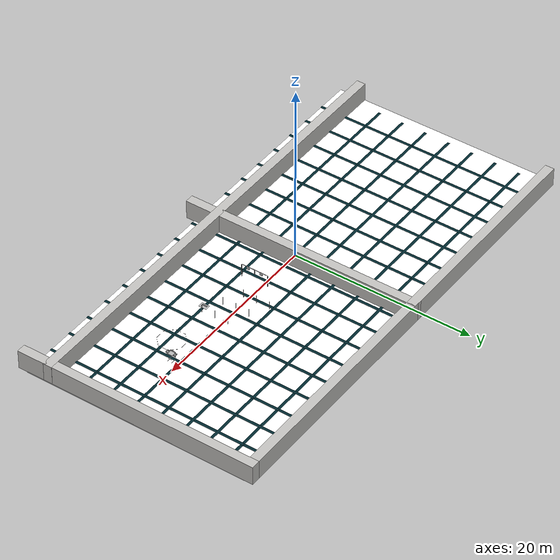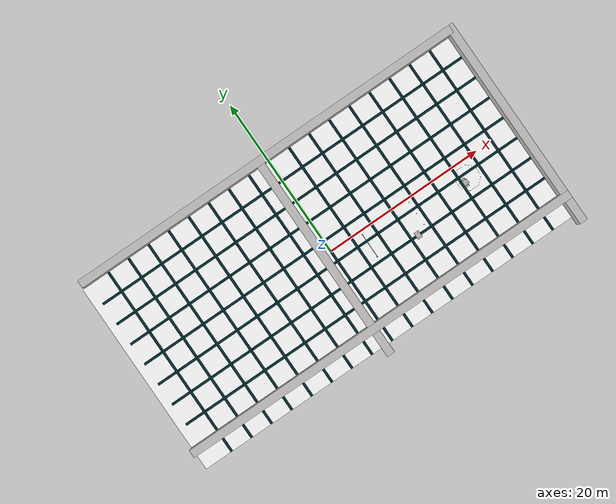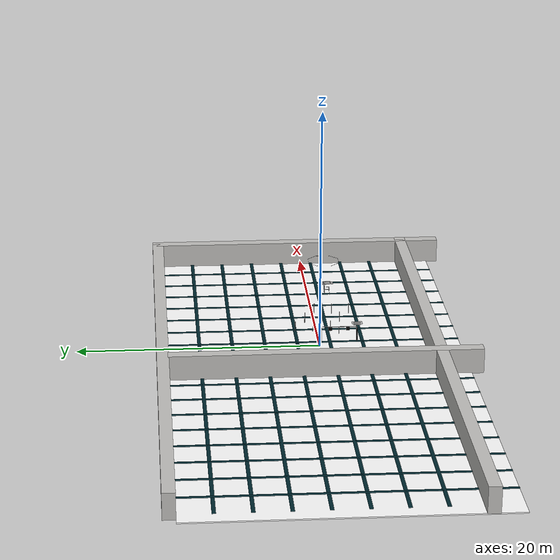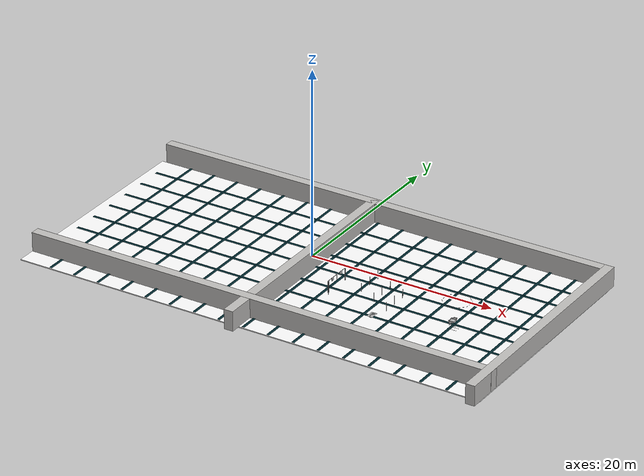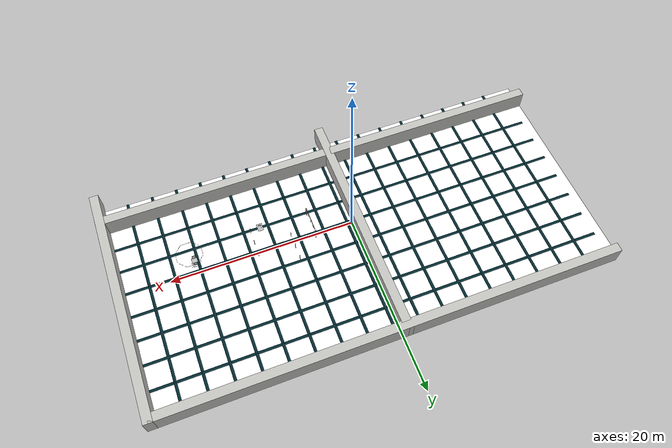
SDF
<?xml version="1.0" ?>
<sdf version="1.6">
  <world name="prequal_world">

    <!-- Configure the scene -->
    <scene>
      <!-- For turquoise ambient -->
      <ambient>0.0 1 1</ambient>
      <background>0.0 0.7 0.8</background>
    </scene>

    <!-- Configure the world physics -->
    <physics name="1ms" type="bullet">
      <max_step_size>0.001</max_step_size>
      <real_time_factor>1.0</real_time_factor>
    </physics>
    <plugin
      filename="gz-sim-physics-system"
      name="gz::sim::systems::Physics">
    </plugin>
    <plugin
      filename="gz-sim-sensors-system"
      name="gz::sim::systems::Sensors">
      <render_engine>ogre2</render_engine>
    </plugin>
    <plugin
      filename="gz-sim-user-commands-system"
      name="gz::sim::systems::UserCommands">
    </plugin>
    <plugin
      filename="gz-sim-scene-broadcaster-system"
      name="gz::sim::systems::SceneBroadcaster">
    </plugin>
    <plugin
      filename="gz-sim-buoyancy-system"
      name="gz::sim::systems::Buoyancy">
      <uniform_fluid_density>1025</uniform_fluid_density>
    </plugin>
    <plugin filename="gz-sim-imu-system"
            name="gz::sim::systems::Imu">
    </plugin>
    <plugin
      filename="gz-sim-air-pressure-system"
      name="gz::sim::systems::AirPressure">
    </plugin>

    <!-- Configure the GUI -->
    <gui>
      <!-- For some reason this is required to get the GUI to render the scene ambient/background -->
      <plugin filename="MinimalScene" name="3D View">
        <gz-gui>
          <title>3D View</title>
          <property type="bool" key="showTitleBar">false</property>
          <property type="string" key="state">docked</property>
        </gz-gui>

        <engine>ogre2</engine>
        <scene>scene</scene>
        <ambient>0.0 1.0 1.0</ambient>
        <background_color>0.0 0.7 0.8</background_color>
      </plugin>

      <!-- Plugins that add functionality to the scene (these got removed when using the MinimalScene Plugin so we have to re-add them-->
      <plugin filename="EntityContextMenuPlugin" name="Entity context menu">
        <gz-gui>
          <property key="state" type="string">floating</property>
          <property key="width" type="double">5</property>
          <property key="height" type="double">5</property>
          <property key="showTitleBar" type="bool">false</property>
        </gz-gui>
      </plugin>
      <plugin filename="GzSceneManager" name="Scene Manager">
        <gz-gui>
          <property key="resizable" type="bool">false</property>
          <property key="width" type="double">5</property>
          <property key="height" type="double">5</property>
          <property key="state" type="string">floating</property>
          <property key="showTitleBar" type="bool">false</property>
        </gz-gui>
      </plugin>
      <plugin filename="InteractiveViewControl" name="Interactive view control">
        <gz-gui>
          <property key="resizable" type="bool">false</property>
          <property key="width" type="double">5</property>
          <property key="height" type="double">5</property>
          <property key="state" type="string">floating</property>
          <property key="showTitleBar" type="bool">false</property>
        </gz-gui>
      </plugin>
      <plugin filename="CameraTracking" name="Camera Tracking">
        <gz-gui>
          <property key="resizable" type="bool">false</property>
          <property key="width" type="double">5</property>
          <property key="height" type="double">5</property>
          <property key="state" type="string">floating</property>
          <property key="showTitleBar" type="bool">false</property>
        </gz-gui>
      </plugin>

      <plugin filename="Spawn" name="Spawn Entities">
        <gz-gui>
          <property key="resizable" type="bool">false</property>
          <property key="width" type="double">5</property>
          <property key="height" type="double">5</property>
          <property key="state" type="string">floating</property>
          <property key="showTitleBar" type="bool">false</property>
        </gz-gui>
      </plugin>

      <!-- World control -->
      <plugin filename="WorldControl" name="World control">
        <gz-gui>
          <title>World control</title>
          <property type="bool" key="showTitleBar">false</property>
          <property type="bool" key="resizable">false</property>
          <property type="double" key="height">72</property>
          <property type="double" key="z">1</property>

          <property type="string" key="state">floating</property>
          <anchors target="3D View">
            <line own="left" target="left"/>
            <line own="bottom" target="bottom"/>
          </anchors>
        </gz-gui>

        <play_pause>true</play_pause>
        <step>true</step>
        <start_paused>true</start_paused>
        <use_event>true</use_event>

      </plugin>

      <!-- World statistics -->
      <plugin filename="WorldStats" name="World stats">
        <gz-gui>
          <title>World stats</title>
          <property type="bool" key="showTitleBar">false</property>
          <property type="bool" key="resizable">false</property>
          <property type="double" key="height">110</property>
          <property type="double" key="width">290</property>
          <property type="double" key="z">1</property>

          <property type="string" key="state">floating</property>
          <anchors target="3D View">
            <line own="right" target="right"/>
            <line own="bottom" target="bottom"/>
          </anchors>
        </gz-gui>

        <sim_time>true</sim_time>
        <real_time>true</real_time>
        <real_time_factor>true</real_time_factor>
        <iterations>true</iterations>
      </plugin>

      <!-- Insert simple shapes -->
      <plugin filename="Shapes" name="Shapes">
        <gz-gui>
          <property key="resizable" type="bool">false</property>
          <property key="x" type="double">0</property>
          <property key="y" type="double">0</property>
          <property key="width" type="double">250</property>
          <property key="height" type="double">50</property>
          <property key="state" type="string">floating</property>
          <property key="showTitleBar" type="bool">false</property>
          <property key="cardBackground" type="string">#666666</property>
        </gz-gui>
      </plugin>

      <!-- Inspector -->
      <plugin filename="ComponentInspector" name="Component inspector">
        <gz-gui>
          <property type="string" key="state">docked</property>
        </gz-gui>
      </plugin>

      <!-- Entity tree -->
      <plugin filename="EntityTree" name="Entity tree">
        <gz-gui>
          <property type="string" key="state">docked</property>
        </gz-gui>
      </plugin>

      <!-- Translate/Rotate Tools -->
      <plugin filename="TransformControl" name="Transform control">
        <gz-gui>
          <property key="resizable" type="bool">false</property>
          <property key="x" type="double">0</property>
          <property key="y" type="double">50</property>
          <property key="width" type="double">250</property>
          <property key="height" type="double">50</property>
          <property key="state" type="string">floating</property>
          <property key="showTitleBar" type="bool">false</property>
          <property key="cardBackground" type="string">#777777</property>
        </gz-gui>
      </plugin>
    </gui>

    <!-- 3D MODELS -->

    <model name='long_wall_1'>
      <pose>0 -10 -1.0668 0 0 0</pose>
      <link name='box_link'>
        <inertial>
          <inertia>
            <ixx>0.16666</ixx>
            <ixy>0</ixy>
            <ixz>0</ixz>
            <iyy>0.16666</iyy>
            <iyz>0</iyz>
            <izz>0.16666</izz>
          </inertia>
          <mass>1</mass>
          <pose>0 0 0 0 0 0</pose>
        </inertial>
        <collision name='box_collision'>
          <geometry>
            <box>
              <size>52 1 2.1336</size>
            </box>
          </geometry>
          <surface>
            <friction>
              <bullet/>
            </friction>
            <bounce/>
            <contact/>
          </surface>
        </collision>
        <visual name='box_visual'>
          <geometry>
            <box>
              <size>52 1 2.1336</size>
            </box>
          </geometry>
          <material>
            <ambient>0.753, 0.749, 0.737 1</ambient>
            <diffuse>0.753, 0.749, 0.737 1</diffuse>
            <specular>0.753, 0.749, 0.737 1</specular>
          </material>
        </visual>
        <pose>0 0 0 0 0 0</pose>
        <enable_wind>false</enable_wind>
      </link>
      <static>true</static>
      <self_collide>false</self_collide>
    </model>
    <model name='long_wall_2'>
      <pose>0 13 -1.0668 0 0 0</pose>
      <link name='box_link'>
        <inertial>
          <inertia>
            <ixx>0.16666</ixx>
            <ixy>0</ixy>
            <ixz>0</ixz>
            <iyy>0.16666</iyy>
            <iyz>0</iyz>
            <izz>0.16666</izz>
          </inertia>
          <mass>1</mass>
          <pose>0 0 0 0 0 0</pose>
        </inertial>
        <collision name='box_collision'>
          <geometry>
            <box>
              <size>51 1 2.1336</size>
            </box>
          </geometry>
          <surface>
            <friction>
              <ode/>
            </friction>
            <bounce/>
            <contact/>
          </surface>
        </collision>
        <visual name='box_visual'>
          <geometry>
            <box>
              <size>51 1 2.1336</size>
            </box>
          </geometry>
          <material>
            <ambient>0.753, 0.749, 0.737 1</ambient>
            <diffuse>0.753, 0.749, 0.737 1</diffuse>
            <specular>0.753, 0.749, 0.737 1</specular>
          </material>
        </visual>
        <pose>0 0 0 0 0 0</pose>
        <enable_wind>false</enable_wind>
      </link>
      <static>true</static>
      <self_collide>false</self_collide>
    </model>
    <model name='wide_wall_1'>
      <pose>25.5 0 -1.0668 0 0 1.57</pose>
      <link name='box_link'>
        <inertial>
          <inertia>
            <ixx>0.16666</ixx>
            <ixy>0</ixy>
            <ixz>0</ixz>
            <iyy>0.16666</iyy>
            <iyz>0</iyz>
            <izz>0.16666</izz>
          </inertia>
          <mass>1</mass>
          <pose>0 0 0 0 0 0</pose>
        </inertial>
        <collision name='box_collision'>
          <geometry>
            <box>
              <size>27 1 2.1336</size>
            </box>
          </geometry>
          <surface>
            <friction>
              <bullet/>
            </friction>
            <bounce/>
            <contact/>
          </surface>
        </collision>
        <visual name='box_visual'>
          <geometry>
            <box>
              <size>27 1 2.1336</size>
            </box>
          </geometry>
          <material>
            <ambient>0.753, 0.749, 0.737 1</ambient>
            <diffuse>0.753, 0.749, 0.737 1</diffuse>
            <specular>0.753, 0.749, 0.737 1</specular>
          </material>
        </visual>
        <pose>0 0 0 0 0 0</pose>
        <enable_wind>false</enable_wind>
      </link>
      <static>true</static>
      <self_collide>false</self_collide>
    </model>
    <model name='wide_wall_2'>
      <pose>-1 0 -1.0668 0 0 1.57</pose>
      <link name='box_link'>
        <inertial>
          <inertia>
            <ixx>0.16666</ixx>
            <ixy>0</ixy>
            <ixz>0</ixz>
            <iyy>0.16666</iyy>
            <iyz>0</iyz>
            <izz>0.16666</izz>
          </inertia>
          <mass>1</mass>
          <pose>0 0 0 0 0 0</pose>
        </inertial>
        <collision name='box_collision'>
          <geometry>
            <box>
              <size>27 1 2.1336</size>
            </box>
          </geometry>
          <surface>
            <friction>
              <bullet/>
            </friction>
            <bounce/>
            <contact/>
          </surface>
        </collision>
        <visual name='box_visual'>
          <geometry>
            <box>
              <size>27 1 2.1336</size>
            </box>
          </geometry>
          <material>
            <ambient>0.753, 0.749, 0.737 1</ambient>
            <diffuse>0.753, 0.749, 0.737 1</diffuse>
            <specular>0.753, 0.749, 0.737 1</specular>
          </material>
        </visual>
        <pose>0 0 0 0 0 0</pose>
        <enable_wind>false</enable_wind>
      </link>
      <static>true</static>
      <self_collide>false</self_collide>
    </model>

    <model name='floor'>
      <pose>0 0 -2.1336 0 0 0</pose>
      <link name='box_link'>
        <inertial>
          <inertia>
            <ixx>0.16666</ixx>
            <ixy>0</ixy>
            <ixz>0</ixz>
            <iyy>0.16666</iyy>
            <iyz>0</iyz>
            <izz>0.16666</izz>
          </inertia>
          <mass>1</mass>
          <pose>0 0 0 0 0 0</pose>
        </inertial>
        <collision name='box_collision'>
          <geometry>
            <box>
              <size>52 25 0.1</size>
            </box>
          </geometry>
          <surface>
            <friction>
              <bullet/>
            </friction>
            <bounce/>
            <contact/>
          </surface>
        </collision>
        <visual name='box_visual'>
          <geometry>
            <box>
              <size>52 25 0.1</size>
            </box>
          </geometry>
          <material>
              <ambient>1 1 1 1</ambient>  <!-- Pure white ambient color -->
              <diffuse>1 1 1 1</diffuse>  <!-- Pure white diffuse color -->
              <specular>1 1 1 1</specular>  <!-- Pure white specular color -->
          </material>
        </visual>
        <pose>0 0 0 0 0 0</pose>
        <enable_wind>false</enable_wind>
      </link>
      <static>true</static>
      <self_collide>false</self_collide>
    </model>

    <model name='lane1'>
      <pose>-22.4 0 -2 0 0 0</pose>
      <link name='box_link'>
        <inertial>
          <inertia>
            <ixx>0.16666</ixx>
            <ixy>0</ixy>
            <ixz>0</ixz>
            <iyy>0.16666</iyy>
            <iyz>0</iyz>
            <izz>0.16666</izz>
          </inertia>
          <mass>1</mass>
          <pose>0 0 0 0 0 0</pose>
        </inertial>
        <visual name='box_visual'>
          <geometry>
            <box>
              <size>.3 25 .01</size>
            </box>
          </geometry>
          <material>
            <ambient>0, 0.153, 0.18, 1</ambient>
            <diffuse>0, 0.153, 0.18, 1</diffuse>
            <specular>0, 0.153, 0.18, 1</specular>
          </material>
        </visual>
        <pose>0 0 0 0 0 0</pose>
        <enable_wind>false</enable_wind>
      </link>
      <static>true</static>
      <self_collide>false</self_collide>
    </model>

    <model name='lane2'>
      <pose>-19.6 0 -2 0 0 0</pose>
      <link name='box_link'>
        <inertial>
          <inertia>
            <ixx>0.16666</ixx>
            <ixy>0</ixy>
            <ixz>0</ixz>
            <iyy>0.16666</iyy>
            <iyz>0</iyz>
            <izz>0.16666</izz>
          </inertia>
          <mass>1</mass>
          <pose>0 0 0 0 0 0</pose>
        </inertial>
        <visual name='box_visual'>
          <geometry>
            <box>
              <size>.3 25 .01</size>
            </box>
          </geometry>
          <material>
            <ambient>0, 0.153, 0.18, 1</ambient>
            <diffuse>0, 0.153, 0.18, 1</diffuse>
            <specular>0, 0.153, 0.18, 1</specular>
          </material>
        </visual>
        <pose>0 0 0 0 0 0</pose>
        <enable_wind>false</enable_wind>
      </link>
      <static>true</static>
      <self_collide>false</self_collide>
    </model>

    <model name='lane3'>
      <pose>-16.8 0 -2 0 0 0</pose>
      <link name='box_link'>
        <inertial>
          <inertia>
            <ixx>0.16666</ixx>
            <ixy>0</ixy>
            <ixz>0</ixz>
            <iyy>0.16666</iyy>
            <iyz>0</iyz>
            <izz>0.16666</izz>
          </inertia>
          <mass>1</mass>
          <pose>0 0 0 0 0 0</pose>
        </inertial>
        <visual name='box_visual'>
          <geometry>
            <box>
              <size>.3 25 .01</size>
            </box>
          </geometry>
          <material>
            <ambient>0, 0.153, 0.18, 1</ambient>
            <diffuse>0, 0.153, 0.18, 1</diffuse>
            <specular>0, 0.153, 0.18, 1</specular>
          </material>
        </visual>
        <pose>0 0 0 0 0 0</pose>
        <enable_wind>false</enable_wind>
      </link>
      <static>true</static>
      <self_collide>false</self_collide>
    </model>

    <model name='lane4'>
      <pose>-14 0 -2 0 0 0</pose>
      <link name='box_link'>
        <inertial>
          <inertia>
            <ixx>0.16666</ixx>
            <ixy>0</ixy>
            <ixz>0</ixz>
            <iyy>0.16666</iyy>
            <iyz>0</iyz>
            <izz>0.16666</izz>
          </inertia>
          <mass>1</mass>
          <pose>0 0 0 0 0 0</pose>
        </inertial>
        <visual name='box_visual'>
          <geometry>
            <box>
              <size>.3 25 .01</size>
            </box>
          </geometry>
          <material>
            <ambient>0, 0.153, 0.18, 1</ambient>
            <diffuse>0, 0.153, 0.18, 1</diffuse>
            <specular>0, 0.153, 0.18, 1</specular>
          </material>
        </visual>
        <pose>0 0 0 0 0 0</pose>
        <enable_wind>false</enable_wind>
      </link>
      <static>true</static>
      <self_collide>false</self_collide>
    </model>

    <model name='lane5'>
      <pose>-11.2 0 -2 0 0 0</pose>
      <link name='box_link'>
        <inertial>
          <inertia>
            <ixx>0.16666</ixx>
            <ixy>0</ixy>
            <ixz>0</ixz>
            <iyy>0.16666</iyy>
            <iyz>0</iyz>
            <izz>0.16666</izz>
          </inertia>
          <mass>1</mass>
          <pose>0 0 0 0 0 0</pose>
        </inertial>
        <visual name='box_visual'>
          <geometry>
            <box>
              <size>.3 25 .01</size>
            </box>
          </geometry>
          <material>
            <ambient>0, 0.153, 0.18, 1</ambient>
            <diffuse>0, 0.153, 0.18, 1</diffuse>
            <specular>0, 0.153, 0.18, 1</specular>
          </material>
        </visual>
        <pose>0 0 0 0 0 0</pose>
        <enable_wind>false</enable_wind>
      </link>
      <static>true</static>
      <self_collide>false</self_collide>
    </model>

    <model name='lane6'>
      <pose>-8.4 0 -2 0 0 0</pose>
      <link name='box_link'>
        <inertial>
          <inertia>
            <ixx>0.16666</ixx>
            <ixy>0</ixy>
            <ixz>0</ixz>
            <iyy>0.16666</iyy>
            <iyz>0</iyz>
            <izz>0.16666</izz>
          </inertia>
          <mass>1</mass>
          <pose>0 0 0 0 0 0</pose>
        </inertial>
        <visual name='box_visual'>
          <geometry>
            <box>
              <size>.3 25 .01</size>
            </box>
          </geometry>
          <material>
            <ambient>0, 0.153, 0.18, 1</ambient>
            <diffuse>0, 0.153, 0.18, 1</diffuse>
            <specular>0, 0.153, 0.18, 1</specular>
          </material>
        </visual>
        <pose>0 0 0 0 0 0</pose>
        <enable_wind>false</enable_wind>
      </link>
      <static>true</static>
      <self_collide>false</self_collide>
    </model>

    <model name='lane7'>
      <pose>-5.6 0 -2 0 0 0</pose>
      <link name='box_link'>
        <inertial>
          <inertia>
            <ixx>0.16666</ixx>
            <ixy>0</ixy>
            <ixz>0</ixz>
            <iyy>0.16666</iyy>
            <iyz>0</iyz>
            <izz>0.16666</izz>
          </inertia>
          <mass>1</mass>
          <pose>0 0 0 0 0 0</pose>
        </inertial>
        <visual name='box_visual'>
          <geometry>
            <box>
              <size>.3 25 .01</size>
            </box>
          </geometry>
          <material>
            <ambient>0, 0.153, 0.18, 1</ambient>
            <diffuse>0, 0.153, 0.18, 1</diffuse>
            <specular>0, 0.153, 0.18, 1</specular>
          </material>
        </visual>
        <pose>0 0 0 0 0 0</pose>
        <enable_wind>false</enable_wind>
      </link>
      <static>true</static>
      <self_collide>false</self_collide>
    </model>

    <model name='lane8'>
      <pose>-2.8 0 -2 0 0 0</pose>
      <link name='box_link'>
        <inertial>
          <inertia>
            <ixx>0.16666</ixx>
            <ixy>0</ixy>
            <ixz>0</ixz>
            <iyy>0.16666</iyy>
            <iyz>0</iyz>
            <izz>0.16666</izz>
          </inertia>
          <mass>1</mass>
          <pose>0 0 0 0 0 0</pose>
        </inertial>
        <visual name='box_visual'>
          <geometry>
            <box>
              <size>.3 25 .01</size>
            </box>
          </geometry>
          <material>
            <ambient>0, 0.153, 0.18, 1</ambient>
            <diffuse>0, 0.153, 0.18, 1</diffuse>
            <specular>0, 0.153, 0.18, 1</specular>
          </material>
        </visual>
        <pose>0 0 0 0 0 0</pose>
        <enable_wind>false</enable_wind>
      </link>
      <static>true</static>
      <self_collide>false</self_collide>
    </model>

    <model name='lane9'>
      <pose>0 0 -2 0 0 0</pose>
      <link name='box_link'>
        <inertial>
          <inertia>
            <ixx>0.16666</ixx>
            <ixy>0</ixy>
            <ixz>0</ixz>
            <iyy>0.16666</iyy>
            <iyz>0</iyz>
            <izz>0.16666</izz>
          </inertia>
          <mass>1</mass>
          <pose>0 0 0 0 0 0</pose>
        </inertial>
        <visual name='box_visual'>
          <geometry>
            <box>
              <size>.3 25 .01</size>
            </box>
          </geometry>
          <material>
            <ambient>0, 0.153, 0.18, 1</ambient>
            <diffuse>0, 0.153, 0.18, 1</diffuse>
            <specular>0, 0.153, 0.18, 1</specular>
          </material>
        </visual>
        <pose>0 0 0 0 0 0</pose>
        <enable_wind>false</enable_wind>
      </link>
      <static>true</static>
      <self_collide>false</self_collide>
    </model>

    <model name='lane10'>
      <pose>22.4 0 -2 0 0 0</pose>
      <link name='box_link'>
        <inertial>
          <inertia>
            <ixx>0.16666</ixx>
            <ixy>0</ixy>
            <ixz>0</ixz>
            <iyy>0.16666</iyy>
            <iyz>0</iyz>
            <izz>0.16666</izz>
          </inertia>
          <mass>1</mass>
          <pose>0 0 0 0 0 0</pose>
        </inertial>
        <visual name='box_visual'>
          <geometry>
            <box>
              <size>.3 25 .01</size>
            </box>
          </geometry>
          <material>
            <ambient>0, 0.153, 0.18, 1</ambient>
            <diffuse>0, 0.153, 0.18, 1</diffuse>
            <specular>0, 0.153, 0.18, 1</specular>
          </material>
        </visual>
        <pose>0 0 0 0 0 0</pose>
        <enable_wind>false</enable_wind>
      </link>
      <static>true</static>
      <self_collide>false</self_collide>
    </model>

    <model name='lane11'>
      <pose>19.6 0 -2 0 0 0</pose>
      <link name='box_link'>
        <inertial>
          <inertia>
            <ixx>0.16666</ixx>
            <ixy>0</ixy>
            <ixz>0</ixz>
            <iyy>0.16666</iyy>
            <iyz>0</iyz>
            <izz>0.16666</izz>
          </inertia>
          <mass>1</mass>
          <pose>0 0 0 0 0 0</pose>
        </inertial>
        <visual name='box_visual'>
          <geometry>
            <box>
              <size>.3 25 .01</size>
            </box>
          </geometry>
          <material>
            <ambient>0, 0.153, 0.18, 1</ambient>
            <diffuse>0, 0.153, 0.18, 1</diffuse>
            <specular>0, 0.153, 0.18, 1</specular>
          </material>
        </visual>
        <pose>0 0 0 0 0 0</pose>
        <enable_wind>false</enable_wind>
      </link>
      <static>true</static>
      <self_collide>false</self_collide>
    </model>

    <model name='lane12'>
      <pose>16.8 0 -2 0 0 0</pose>
      <link name='box_link'>
        <inertial>
          <inertia>
            <ixx>0.16666</ixx>
            <ixy>0</ixy>
            <ixz>0</ixz>
            <iyy>0.16666</iyy>
            <iyz>0</iyz>
            <izz>0.16666</izz>
          </inertia>
          <mass>1</mass>
          <pose>0 0 0 0 0 0</pose>
        </inertial>
        <visual name='box_visual'>
          <geometry>
            <box>
              <size>.3 25 .01</size>
            </box>
          </geometry>
          <material>
            <ambient>0, 0.153, 0.18, 1</ambient>
            <diffuse>0, 0.153, 0.18, 1</diffuse>
            <specular>0, 0.153, 0.18, 1</specular>
          </material>
        </visual>
        <pose>0 0 0 0 0 0</pose>
        <enable_wind>false</enable_wind>
      </link>
      <static>true</static>
      <self_collide>false</self_collide>
    </model>

    <model name='lane13'>
      <pose>14 0 -2 0 0 0</pose>
      <link name='box_link'>
        <inertial>
          <inertia>
            <ixx>0.16666</ixx>
            <ixy>0</ixy>
            <ixz>0</ixz>
            <iyy>0.16666</iyy>
            <iyz>0</iyz>
            <izz>0.16666</izz>
          </inertia>
          <mass>1</mass>
          <pose>0 0 0 0 0 0</pose>
        </inertial>
        <visual name='box_visual'>
          <geometry>
            <box>
              <size>.3 25 .01</size>
            </box>
          </geometry>
          <material>
            <ambient>0, 0.153, 0.18, 1</ambient>
            <diffuse>0, 0.153, 0.18, 1</diffuse>
            <specular>0, 0.153, 0.18, 1</specular>
          </material>
        </visual>
        <pose>0 0 0 0 0 0</pose>
        <enable_wind>false</enable_wind>
      </link>
      <static>true</static>
      <self_collide>false</self_collide>
    </model>

    <model name='lane14'>
      <pose>11.2 0 -2 0 0 0</pose>
      <link name='box_link'>
        <inertial>
          <inertia>
            <ixx>0.16666</ixx>
            <ixy>0</ixy>
            <ixz>0</ixz>
            <iyy>0.16666</iyy>
            <iyz>0</iyz>
            <izz>0.16666</izz>
          </inertia>
          <mass>1</mass>
          <pose>0 0 0 0 0 0</pose>
        </inertial>
        <visual name='box_visual'>
          <geometry>
            <box>
              <size>.3 25 .01</size>
            </box>
          </geometry>
          <material>
            <ambient>0, 0.153, 0.18, 1</ambient>
            <diffuse>0, 0.153, 0.18, 1</diffuse>
            <specular>0, 0.153, 0.18, 1</specular>
          </material>
        </visual>
        <pose>0 0 0 0 0 0</pose>
        <enable_wind>false</enable_wind>
      </link>
      <static>true</static>
      <self_collide>false</self_collide>
    </model>

    <model name='lane15'>
      <pose>8.4 0 -2 0 0 0</pose>
      <link name='box_link'>
        <inertial>
          <inertia>
            <ixx>0.16666</ixx>
            <ixy>0</ixy>
            <ixz>0</ixz>
            <iyy>0.16666</iyy>
            <iyz>0</iyz>
            <izz>0.16666</izz>
          </inertia>
          <mass>1</mass>
          <pose>0 0 0 0 0 0</pose>
        </inertial>
        <visual name='box_visual'>
          <geometry>
            <box>
              <size>.3 25 .01</size>
            </box>
          </geometry>
          <material>
            <ambient>0, 0.153, 0.18, 1</ambient>
            <diffuse>0, 0.153, 0.18, 1</diffuse>
            <specular>0, 0.153, 0.18, 1</specular>
          </material>
        </visual>
        <pose>0 0 0 0 0 0</pose>
        <enable_wind>false</enable_wind>
      </link>
      <static>true</static>
      <self_collide>false</self_collide>
    </model>

    <model name='lane16'>
      <pose>5.6 0 -2 0 0 0</pose>
      <link name='box_link'>
        <inertial>
          <inertia>
            <ixx>0.16666</ixx>
            <ixy>0</ixy>
            <ixz>0</ixz>
            <iyy>0.16666</iyy>
            <iyz>0</iyz>
            <izz>0.16666</izz>
          </inertia>
          <mass>1</mass>
          <pose>0 0 0 0 0 0</pose>
        </inertial>
        <visual name='box_visual'>
          <geometry>
            <box>
              <size>.3 25 .01</size>
            </box>
          </geometry>
          <material>
            <ambient>0, 0.153, 0.18, 1</ambient>
            <diffuse>0, 0.153, 0.18, 1</diffuse>
            <specular>0, 0.153, 0.18, 1</specular>
          </material>
        </visual>
        <pose>0 0 0 0 0 0</pose>
        <enable_wind>false</enable_wind>
      </link>
      <static>true</static>
      <self_collide>false</self_collide>
    </model>

    <model name='lane17'>
      <pose>2.8 0 -2 0 0 0</pose>
      <link name='box_link'>
        <inertial>
          <inertia>
            <ixx>0.16666</ixx>
            <ixy>0</ixy>
            <ixz>0</ixz>
            <iyy>0.16666</iyy>
            <iyz>0</iyz>
            <izz>0.16666</izz>
          </inertia>
          <mass>1</mass>
          <pose>0 0 0 0 0 0</pose>
        </inertial>
        <visual name='box_visual'>
          <geometry>
            <box>
              <size>.3 25 .01</size>
            </box>
          </geometry>
          <material>
            <ambient>0, 0.153, 0.18, 1</ambient>
            <diffuse>0, 0.153, 0.18, 1</diffuse>
            <specular>0, 0.153, 0.18, 1</specular>
          </material>
        </visual>
        <pose>0 0 0 0 0 0</pose>
        <enable_wind>false</enable_wind>
      </link>
      <static>true</static>
      <self_collide>false</self_collide>
    </model>

    <model name='lane18'>
      <pose>0 1.4 -2 0 0 1.57</pose>
      <link name='box_link'>
        <inertial>
          <inertia>
            <ixx>0.16666</ixx>
            <ixy>0</ixy>
            <ixz>0</ixz>
            <iyy>0.16666</iyy>
            <iyz>0</iyz>
            <izz>0.16666</izz>
          </inertia>
          <mass>1</mass>
          <pose>0 0 0 0 0 0</pose>
        </inertial>
        <visual name='box_visual'>
          <geometry>
            <box>
              <size>.3 50 .01</size>
            </box>
          </geometry>
          <material>
            <ambient>0, 0.153, 0.18, 1</ambient>
            <diffuse>0, 0.153, 0.18, 1</diffuse>
            <specular>0, 0.153, 0.18, 1</specular>
          </material>
        </visual>
        <pose>0 0 0 0 0 0</pose>
        <enable_wind>false</enable_wind>
      </link>
      <static>true</static>
      <self_collide>false</self_collide>
    </model>

    <model name='lane19'>
      <pose>0 4.2 -2 0 0 1.57</pose>
      <link name='box_link'>
        <inertial>
          <inertia>
            <ixx>0.16666</ixx>
            <ixy>0</ixy>
            <ixz>0</ixz>
            <iyy>0.16666</iyy>
            <iyz>0</iyz>
            <izz>0.16666</izz>
          </inertia>
          <mass>1</mass>
          <pose>0 0 0 0 0 0</pose>
        </inertial>
        <visual name='box_visual'>
          <geometry>
            <box>
              <size>.3 50 .01</size>
            </box>
          </geometry>
          <material>
            <ambient>0, 0.153, 0.18, 1</ambient>
            <diffuse>0, 0.153, 0.18, 1</diffuse>
            <specular>0, 0.153, 0.18, 1</specular>
          </material>
        </visual>
        <pose>0 0 0 0 0 0</pose>
        <enable_wind>false</enable_wind>
      </link>
      <static>true</static>
      <self_collide>false</self_collide>
    </model>

    <model name='lane20'>
      <pose>0 7 -2 0 0 1.57</pose>
      <link name='box_link'>
        <inertial>
          <inertia>
            <ixx>0.16666</ixx>
            <ixy>0</ixy>
            <ixz>0</ixz>
            <iyy>0.16666</iyy>
            <iyz>0</iyz>
            <izz>0.16666</izz>
          </inertia>
          <mass>1</mass>
          <pose>0 0 0 0 0 0</pose>
        </inertial>
        <visual name='box_visual'>
          <geometry>
            <box>
              <size>.3 50 .01</size>
            </box>
          </geometry>
          <material>
            <ambient>0, 0.153, 0.18, 1</ambient>
            <diffuse>0, 0.153, 0.18, 1</diffuse>
            <specular>0, 0.153, 0.18, 1</specular>
          </material>
        </visual>
        <pose>0 0 0 0 0 0</pose>
        <enable_wind>false</enable_wind>
      </link>
      <static>true</static>
      <self_collide>false</self_collide>
    </model>

    <model name='lane21'>
      <pose>0 9.8 -2 0 0 1.57</pose>
      <link name='box_link'>
        <inertial>
          <inertia>
            <ixx>0.16666</ixx>
            <ixy>0</ixy>
            <ixz>0</ixz>
            <iyy>0.16666</iyy>
            <iyz>0</iyz>
            <izz>0.16666</izz>
          </inertia>
          <mass>1</mass>
          <pose>0 0 0 0 0 0</pose>
        </inertial>
        <visual name='box_visual'>
          <geometry>
            <box>
              <size>.3 50 .01</size>
            </box>
          </geometry>
          <material>
            <ambient>0, 0.153, 0.18, 1</ambient>
            <diffuse>0, 0.153, 0.18, 1</diffuse>
            <specular>0, 0.153, 0.18, 1</specular>
          </material>
        </visual>
        <pose>0 0 0 0 0 0</pose>
        <enable_wind>false</enable_wind>
      </link>
      <static>true</static>
      <self_collide>false</self_collide>
    </model>

    <model name='lane22'>
      <pose>0 -1.4 -2 0 0 1.57</pose>
      <link name='box_link'>
        <inertial>
          <inertia>
            <ixx>0.16666</ixx>
            <ixy>0</ixy>
            <ixz>0</ixz>
            <iyy>0.16666</iyy>
            <iyz>0</iyz>
            <izz>0.16666</izz>
          </inertia>
          <mass>1</mass>
          <pose>0 0 0 0 0 0</pose>
        </inertial>
        <visual name='box_visual'>
          <geometry>
            <box>
              <size>.3 50 .01</size>
            </box>
          </geometry>
          <material>
            <ambient>0, 0.153, 0.18, 1</ambient>
            <diffuse>0, 0.153, 0.18, 1</diffuse>
            <specular>0, 0.153, 0.18, 1</specular>
          </material>
        </visual>
        <pose>0 0 0 0 0 0</pose>
        <enable_wind>false</enable_wind>
      </link>
      <static>true</static>
      <self_collide>false</self_collide>
    </model>

    <model name='lane23'>
      <pose>0 -4.2 -2 0 0 1.57</pose>
      <link name='box_link'>
        <inertial>
          <inertia>
            <ixx>0.16666</ixx>
            <ixy>0</ixy>
            <ixz>0</ixz>
            <iyy>0.16666</iyy>
            <iyz>0</iyz>
            <izz>0.16666</izz>
          </inertia>
          <mass>1</mass>
          <pose>0 0 0 0 0 0</pose>
        </inertial>
        <visual name='box_visual'>
          <geometry>
            <box>
              <size>.3 50 .01</size>
            </box>
          </geometry>
          <material>
            <ambient>0, 0.153, 0.18, 1</ambient>
            <diffuse>0, 0.153, 0.18, 1</diffuse>
            <specular>0, 0.153, 0.18, 1</specular>
          </material>
        </visual>
        <pose>0 0 0 0 0 0</pose>
        <enable_wind>false</enable_wind>
      </link>
      <static>true</static>
      <self_collide>false</self_collide>
    </model>

    <model name='lane24'>
      <pose>0 -7 -2 0 0 1.57</pose>
      <link name='box_link'>
        <inertial>
          <inertia>
            <ixx>0.16666</ixx>
            <ixy>0</ixy>
            <ixz>0</ixz>
            <iyy>0.16666</iyy>
            <iyz>0</iyz>
            <izz>0.16666</izz>
          </inertia>
          <mass>1</mass>
          <pose>0 0 0 0 0 0</pose>
        </inertial>
        <visual name='box_visual'>
          <geometry>
            <box>
              <size>.3 50 .01</size>
            </box>
          </geometry>
          <material>
            <ambient>0, 0.153, 0.18, 1</ambient>
            <diffuse>0, 0.153, 0.18, 1</diffuse>
            <specular>0, 0.153, 0.18, 1</specular>
          </material>
        </visual>
        <pose>0 0 0 0 0 0</pose>
        <enable_wind>false</enable_wind>
      </link>
      <static>true</static>
      <self_collide>false</self_collide>
    </model>

    <model name='lane25'>
      <pose>0 -9.8 -2 0 0 1.57</pose>
      <link name='box_link'>
        <inertial>
          <inertia>
            <ixx>0.16666</ixx>
            <ixy>0</ixy>
            <ixz>0</ixz>
            <iyy>0.16666</iyy>
            <iyz>0</iyz>
            <izz>0.16666</izz>
          </inertia>
          <mass>1</mass>
          <pose>0 0 0 0 0 0</pose>
        </inertial>
        <visual name='box_visual'>
          <geometry>
            <box>
              <size>.3 50 .01</size>
            </box>
          </geometry>
          <material>
            <ambient>0, 0.153, 0.18, 1</ambient>
            <diffuse>0, 0.153, 0.18, 1</diffuse>
            <specular>0, 0.153, 0.18, 1</specular>
          </material>
        </visual>
        <pose>0 0 0 0 0 0</pose>
        <enable_wind>false</enable_wind>
      </link>
      <static>true</static>
      <self_collide>false</self_collide>
    </model>

    <!-- TASKS -->
    <!-- GATE TASK -->
    <include>
      <uri>Gate</uri>
      <pose>4 -2 -1.5 0.0 3.14 1.57</pose>
      <!-- Right side -->
      <!-- Right side Weird angle-->
      <!-- Extreme right side-->
      <!-- Left Side -->
    </include>
    <include>
      <uri>GateLeftLabel</uri>
      <pose>4 -2 -1.5 0.0 3.14 1.57</pose>
    </include>
    <include>
      <uri>GateRightLabel</uri>
      <pose>4 -2 -1.5 0.0 3.14 1.57</pose>
    </include>
    <include>
      <uri>GateLeftImageLabel</uri>
      <pose>4 -2 -1.5 0.0 3.14 1.57</pose>
    </include>
    <include>
      <uri>GateRightImageLabel</uri>
      <pose>4 -2 -1.5 0.0 3.14 1.57</pose>
    </include>

    <!-- SLALOM TASK -->
    <include>
      <uri>Slalom</uri>
      <name>Slalom_1</name>
      <pose>6.5 0.0 -1.3716 0 0 1.57</pose>
    </include>
    <include>
      <uri>SlalomLeftLabel</uri>
      <name>Slalom_1_Left</name>
      <pose>6.5 0.0 -1.3716 0 0 1.57</pose>
    </include>
    <include>
      <uri>SlalomCenterLabel</uri>
      <name>Slalom_1_Center</name>
      <pose>6.5 0.0 -1.3716 0 0 1.57</pose>
    </include>
    <include>
      <uri>SlalomRightLabel</uri>
      <name>Slalom_1_Right</name>
      <pose>6.5 0.0 -1.3716 0 0 1.57</pose>
    </include>

    <include>
      <uri>Slalom</uri>
      <name>Slalom_2</name>
      <pose>8.5 -1.0 -1.3716 0 0 1.57</pose>
    </include>
    <include>
      <uri>SlalomLeftLabel</uri>
      <name>Slalom_2_Left</name>
      <pose>8.5 -1.0 -1.3716 0 0 1.57</pose>
    </include>
    <include>
      <uri>SlalomCenterLabel</uri>
      <name>Slalom_2_Center</name>
      <pose>8.5 -1.0 -1.3716 0 0 1.57</pose>
    </include>
    <include>
      <uri>SlalomRightLabel</uri>
      <name>Slalom_2_Right</name>
      <pose>8.5 -1.0 -1.3716 0 0 1.57</pose>
    </include>

    <include>
      <uri>Slalom</uri>
      <name>Slalom_3</name>
      <pose>10.5 -2.0 -1.3716 0 0 1.57</pose>
    </include>
    <include>
      <uri>SlalomLeftLabel</uri>
      <name>Slalom_3_Left</name>
      <pose>10.5 -2.0 -1.3716 0 0 1.57</pose>
    </include>
    <include>
      <uri>SlalomCenterLabel</uri>
      <name>Slalom_3_Center</name>
      <pose>10.5 -2.0 -1.3716 0 0 1.57</pose>
    </include>
    <include>
      <uri>SlalomRightLabel</uri>
      <name>Slalom_3_Right</name>
      <pose>10.5 -2.0 -1.3716 0 0 1.57</pose>
    </include>

    <!--BIN TASK-->
    <include>
      <uri>Bin</uri>
      <pose> 9.0 -3.70 -2 1.57 0 0.0</pose>
    </include>

    <!--OCTAGON TASK-->
    <include>
      <uri>Octagon</uri>
      <pose> 16.0 -3.3 1 0 0 0.0</pose>
    </include>

    <include>
      <uri>Table</uri>
      <pose> 17.1 -2.25 -1 0 0 0.0</pose>
    </include>

    <!--TORPEDO TAGGING TASK-->

  </world>
</sdf>

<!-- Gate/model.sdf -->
<sdf version="1.10">
    <model name="Gate">
        <cast_shadows>false</cast_shadows>
        <link name="link">
            <cast_shadows>false</cast_shadows>
            <collision name="collision">
                <geometry>
                    <mesh>
                        <uri>meshes/Robosubgate2025.obj</uri>
                        <scale>1 1 1</scale>
                    </mesh>
                </geometry>
            </collision>

            <visual name="visual">
                <geometry>
                    <mesh>
                        <uri>meshes/Robosubgate2025.obj</uri>
                        <scale>1 1 1</scale>
                    </mesh>
                </geometry>
                <cast_shadows>false</cast_shadows>
            </visual>
        </link>
        <static>true</static>
    </model>
</sdf>

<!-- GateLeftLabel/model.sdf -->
<sdf version="1.10">
    <model name="GateLeftLabel">
        <cast_shadows>false</cast_shadows>
        <link name="link">
            <visual name="left_side_label">
                <pose>-1.53 0 -0.85 0 0 0</pose>
                <geometry>
                    <cylinder>
                        <length>1.24</length>
                        <radius>0.06</radius>
                    </cylinder>
                </geometry>
                <cast_shadows>false</cast_shadows>

                <material>
                    <ambient>0, 0, 0, 0</ambient>
                    <diffuse>0, 0, 0, 0</diffuse>
                    <specular>0, 0, 0, 0</specular>
                </material>
                <plugin filename="gz-sim-label-system" name="gz::sim::systems::Label">
                    <label>2</label>
                </plugin>
            </visual>
        </link>
        <static>true</static>
    </model>
</sdf>

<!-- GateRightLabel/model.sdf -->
<sdf version="1.10">
    <model name="GateRightLabel">
        <cast_shadows>false</cast_shadows>
        <link name="link">
            <visual name="right_side_label">
                <pose>1.53 0 -0.85 0 0 0</pose>
                <geometry>
                    <cylinder>
                        <length>1.24</length>
                        <radius>0.06</radius>
                    </cylinder>
                </geometry>
                <cast_shadows>false</cast_shadows>

                <material>
                    <ambient>0, 0, 0, 0</ambient>
                    <diffuse>0, 0, 0, 0</diffuse>
                    <specular>0, 0, 0, 0</specular>
                </material>
                <plugin filename="gz-sim-label-system" name="gz::sim::systems::Label">
                    <label>3</label>
                </plugin>
            </visual>
        </link>
        <static>true</static>
    </model>
</sdf>

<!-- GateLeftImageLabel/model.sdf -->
<sdf version="1.10">
    <model name="GateLeftImageLabel">
        <cast_shadows>false</cast_shadows>
        <link name="link">
            <visual name="left_side_label">
                <pose>-0.755 0.026 -1.355 0 0 0</pose>
                <geometry>
                    <box>
                        <size>0.31 0.001 0.33</size>
                    </box>
                </geometry>
                <cast_shadows>false</cast_shadows>

                <material>
                    <ambient>0, 0, 0, 0</ambient>
                    <diffuse>0, 0, 0, 0</diffuse>
                    <specular>0, 0, 0, 0</specular>
                </material>
                <plugin filename="gz-sim-label-system" name="gz::sim::systems::Label">
                    <label>1</label>
                </plugin>
            </visual>
        </link>
        <static>true</static>
    </model>
</sdf>

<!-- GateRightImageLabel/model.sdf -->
<sdf version="1.10">
    <model name="GateRightImageLabel">
        <cast_shadows>false</cast_shadows>
        <link name="link">
            <visual name="right_side_label">
                <pose>0.755 0.026 -1.355 0 0 0</pose>
                <geometry>
                    <box>
                        <size>0.31 0.001 0.33</size>
                    </box>
                </geometry>
                <cast_shadows>false</cast_shadows>

                <material>
                    <ambient>0, 0, 0, 0</ambient>
                    <diffuse>0, 0, 0, 0</diffuse>
                    <specular>0, 0, 0, 0</specular>
                </material>
                <plugin filename="gz-sim-label-system" name="gz::sim::systems::Label">
                    <label>0</label>
                </plugin>
            </visual>
        </link>
        <static>true</static>
    </model>
</sdf>

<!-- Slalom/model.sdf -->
<sdf version="1.10">
    <model name="Slalom_Red">
        <cast_shadows>false</cast_shadows>
        <link name="link">
            <cast_shadows>false</cast_shadows>
            <collision name="collision">
                <geometry>
                    <mesh>
                        <uri>meshes/Slalom.obj</uri>
                        <scale>1 1 1</scale>
                    </mesh>
                </geometry>
            </collision>

            <visual name="visual">
                <geometry>
                    <mesh>
                        <uri>meshes/Slalom.obj</uri>
                        <scale>1 1 1</scale>
                    </mesh>
                </geometry>
                <cast_shadows>false</cast_shadows>
            </visual>
        </link>
        <static>true</static>
    </model>
</sdf>

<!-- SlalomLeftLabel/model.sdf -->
<sdf version="1.10">
    <model name="SlalomLeftLabel">
        <cast_shadows>false</cast_shadows>
        <link name="link">
            <visual name="left_slalom_label">
                <pose>1.52 0 0.46 0 0 0</pose>
                <geometry>
                    <cylinder>
                        <length>0.93</length>
                        <radius>0.0254</radius>
                    </cylinder>
                </geometry>
                <cast_shadows>false</cast_shadows>

                <material>
                    <ambient>0, 0, 0, 0</ambient>
                    <diffuse>0, 0, 0, 0</diffuse>
                    <specular>0, 0, 0, 0</specular>
                </material>
                <plugin filename="gz-sim-label-system" name="gz::sim::systems::Label">
                    <label>5</label>
                </plugin>
            </visual>
        </link>
        <static>true</static>
    </model>
</sdf>

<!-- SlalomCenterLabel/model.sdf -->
<sdf version="1.10">
    <model name="SlalomCenterLabel">
        <cast_shadows>false</cast_shadows>
        <link name="link">
            <visual name="center_slalom_label">
                <pose>0 0 0.46 0 0 0</pose>
                <geometry>
                    <cylinder>
                        <length>0.93</length>
                        <radius>0.0254</radius>
                    </cylinder>
                </geometry>
                <cast_shadows>false</cast_shadows>

                <material>
                    <ambient>0, 0, 0, 0</ambient>
                    <diffuse>0, 0, 0, 0</diffuse>
                    <specular>0, 0, 0, 0</specular>
                </material>
                <plugin filename="gz-sim-label-system" name="gz::sim::systems::Label">
                    <label>4</label>
                </plugin>
            </visual>
        </link>
        <static>true</static>
    </model>
</sdf>

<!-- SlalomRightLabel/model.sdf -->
<sdf version="1.10">
    <model name="SlalomRightLabel">
        <cast_shadows>false</cast_shadows>
        <link name="link">
            <visual name="right_slalom_label">
                <pose>-1.52 0 0.46 0 0 0</pose>
                <geometry>
                    <cylinder>
                        <length>0.93</length>
                        <radius>0.0254</radius>
                    </cylinder>
                </geometry>
                <cast_shadows>false</cast_shadows>

                <material>
                    <ambient>0, 0, 0, 0</ambient>
                    <diffuse>0, 0, 0, 0</diffuse>
                    <specular>0, 0, 0, 0</specular>
                </material>
                <plugin filename="gz-sim-label-system" name="gz::sim::systems::Label">
                    <label>5</label>
                </plugin>
            </visual>
        </link>
        <static>true</static>
    </model>
</sdf>

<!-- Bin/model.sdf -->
<sdf version="1.10">
    <model name="Bin">
        <cast_shadows>false</cast_shadows>
        <link name="link">
            <cast_shadows>false</cast_shadows>
            <collision name="collision">
                <geometry>
                    <mesh>
                        <uri>meshes/Bin.obj</uri>
                        <scale>1 1 1</scale>
                    </mesh>
                </geometry>
            </collision>

            <visual name="visual">
                <geometry>
                    <mesh>
                        <uri>meshes/Bin.obj</uri>
                        <scale>1 1 1</scale>
                    </mesh>
                </geometry>
                <cast_shadows>false</cast_shadows>
            </visual>
        </link>

        <plugin filename="gz-sim-label-system" name="gz::sim::systems::Label">
            <label>7</label>
        </plugin>
        <static>true</static>
    </model>
</sdf>

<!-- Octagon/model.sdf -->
<sdf version="1.10">
    <model name="Octagon">
        <cast_shadows>false</cast_shadows>
        <link name="link">
            <cast_shadows>false</cast_shadows>
            <collision name="collision">
                <geometry>
                    <mesh>
                        <uri>meshes/Octagon.obj</uri>
                        <scale>1 1 1</scale>
                    </mesh>
                </geometry>
            </collision>

            <visual name="visual">
                <geometry>
                    <mesh>
                        <uri>meshes/Octagon.obj</uri>
                        <scale>1 1 1</scale>
                    </mesh>
                </geometry>
                <cast_shadows>false</cast_shadows>
            </visual>
        </link>
        <static>true</static>
    </model>
</sdf>

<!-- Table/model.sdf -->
<sdf version="1.10">
    <model name="Table">
        <cast_shadows>false</cast_shadows>
        <link name="link">
            <cast_shadows>false</cast_shadows>
            <collision name="collision">
                <geometry>
                    <mesh>
                        <uri>meshes/Table.obj</uri>
                        <scale>1 1 1</scale>
                    </mesh>
                </geometry>
            </collision>

            <visual name="visual">
                <geometry>
                    <mesh>
                        <uri>meshes/Table.obj</uri>
                        <scale>1 1 1</scale>
                    </mesh>
                </geometry>
                <cast_shadows>false</cast_shadows>
            </visual>
        </link>
        <plugin filename="gz-sim-label-system" name="gz::sim::systems::Label">
            <label>8</label>
        </plugin>
        <static>true</static>
    </model>
</sdf>
